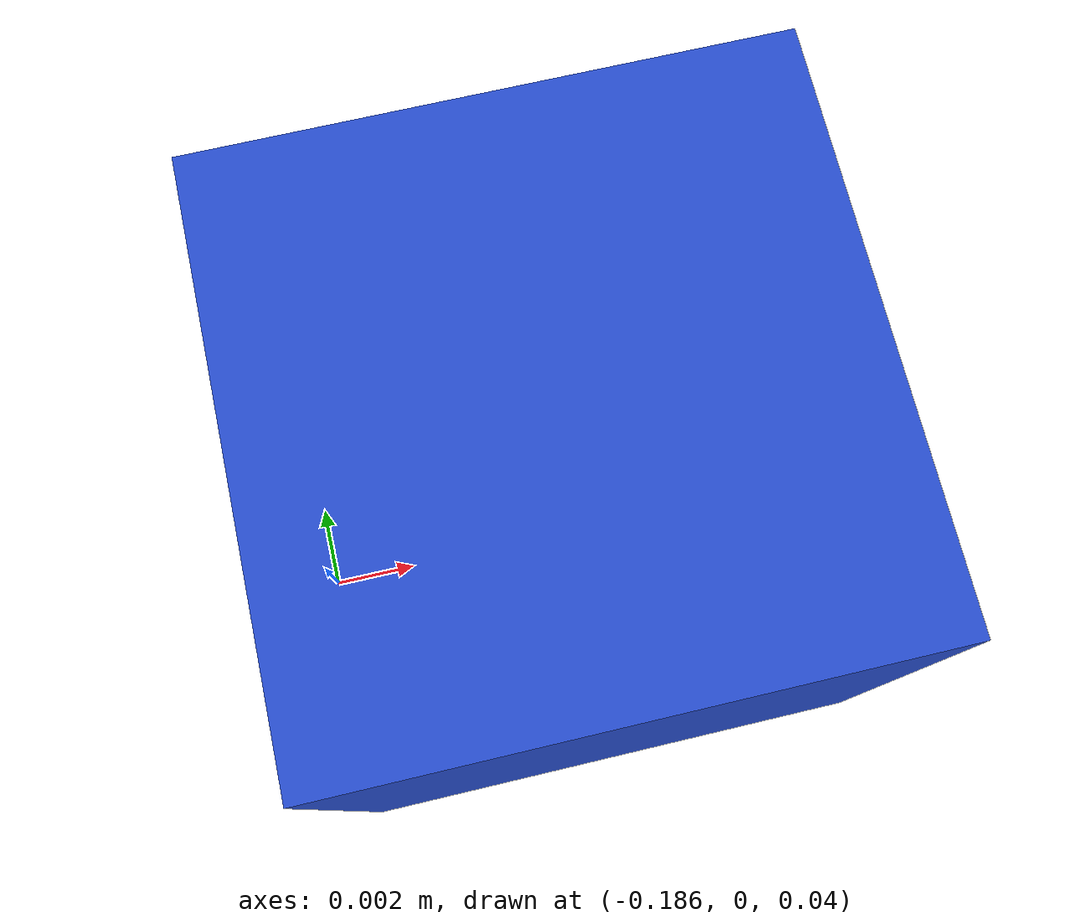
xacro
<?xml version="1.0"?>
<robot name="simple_box" xmlns:xacro="http://www.ros.org/wiki/xacro">
  <property name="BOX_SIZE" value="0.012"/>
  <link name="cube1">
    <inertial>
      <origin xyz="-0.18 0 0" />
      <mass value="0.02" />
      <inertia  ixx="1.0" ixy="0.0"  ixz="0.0"  iyy="100.0"  iyz="0.0"  izz="1.0" />
    </inertial>
    <visual>
      <origin xyz="-0.18 0 0.046"/>
      <geometry>
        <box size="${BOX_SIZE} ${BOX_SIZE} ${BOX_SIZE}" />
      </geometry>
    </visual>
    <collision>
      <origin xyz="-0.18 0 0.046"/>
      <geometry>
        <box size="${BOX_SIZE} ${BOX_SIZE} ${BOX_SIZE}" />
      </geometry>
    </collision>
  </link>
  <gazebo reference="cube1">
    <material>Gazebo/Blue</material>
  </gazebo>

</robot>
